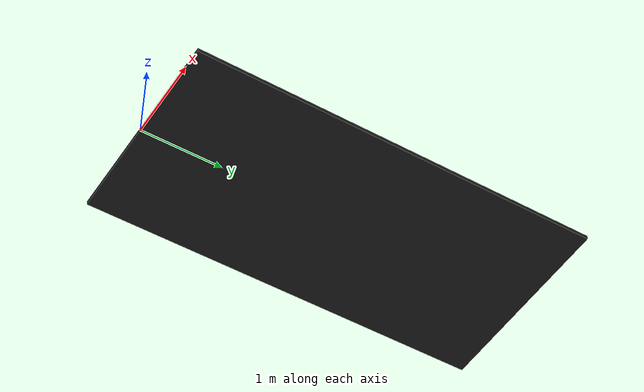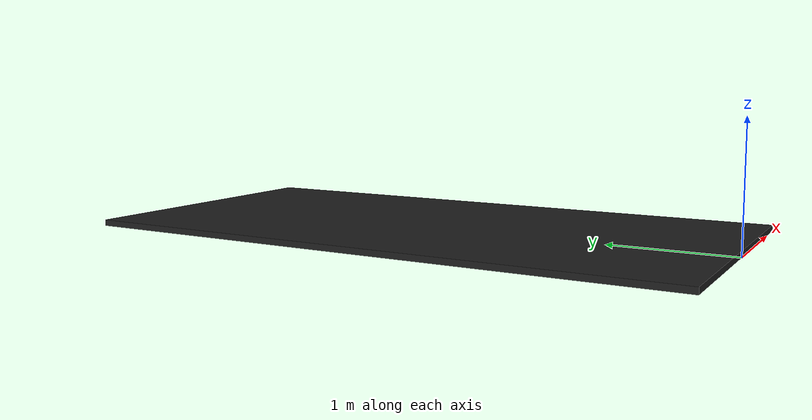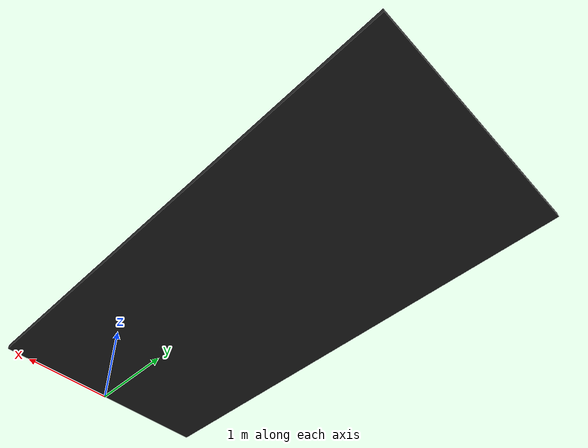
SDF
<?xml version='1.0'?>
<sdf version="1.5">
  <model name="split_flat_surface_75mu"> <!-- Very important to change-->
    <static>true</static>
    <pose>0 0 0 0 0 0</pose> <!-- Translation: X Y Z and Rotation: Roll Pitch Yaw (In Radian)-->
    <link name="body">

    <inertial> >
    <mass>0</mass>
      <inertia>
        <ixx>0</ixx>
        <ixy>0</ixy>
        <ixz>0</ixz>
        <iyy>0</iyy>
        <iyz>0</iyz>
        <izz>0</izz>
      </inertia>
    </inertial>

       <collision name="collision"> <!-- You can use mesh like below -->
        <geometry>
          <mesh><!-- Very important to change-->
             <uri>/home/sorox23/robotic_ws/master_thesis_ws/src/property_based_tester/environment/models/split_flat_surface_75mu/meshes/split_flat_surface_75mu.stl</uri>
             <scale>0.01 0.01 0.01</scale>
          </mesh>
        </geometry>
        <surface>
          <friction>
            <ode>
              <mu>0.75</mu>
              <mu2>0.75</mu2>
            </ode>
          </friction>
        </surface>
      </collision>

      <visual name="visual">
        <geometry>
          <mesh><!-- Very important to change-->
             <uri>/home/sorox23/robotic_ws/master_thesis_ws/src/property_based_tester/environment/models/split_flat_surface_75mu/meshes/split_flat_surface_75mu.stl</uri>
             <scale>0.01 0.01 0.01</scale>
          </mesh>
        </geometry>

        <material>
          <script> <!-- Very important to change-->
             <uri>/home/sorox23/robotic_ws/master_thesis_ws/src/property_based_tester/environment/models/split_flat_surface_75mu/materials/scripts</uri>
             <uri>/home/sorox23/robotic_ws/master_thesis_ws/src/property_based_tester/environment/models/split_flat_surface_75mu/materials/textures</uri>
             <name>Gazebo/Black</name>
          </script>
        </material>
      </visual>

    </link>
  </model>
</sdf>
